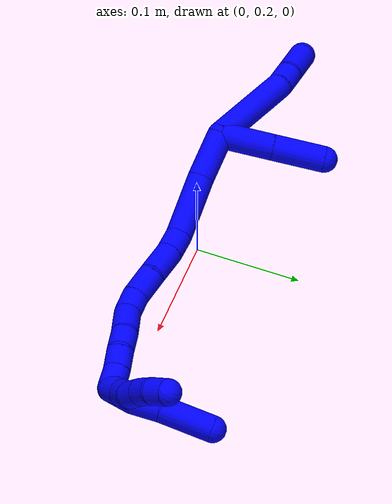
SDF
<sdf version="1.7">
 <world name="default">
  <model name="1">
   <static>0</static>
   <link name="1">
    <collision name="collision-cylinder-e_1_2_8">
     <pose>-0.037818 -0.020803 -0.017331 2.2654 -0.949428 -1.66327</pose>
     <geometry><cylinder><radius>0.0125</radius><length>0.093023</length></cylinder></geometry>
     <surface>
      <friction><ode><mu>1.16</mu><mu2>1.16</mu2><slip1>0</slip1><slip2>0</slip2></ode></friction>
      <contact><ode><kp>1e+06</kp><kd>1</kd><max_vel>0</max_vel><min_depth>0.001</min_depth></ode></contact>
     </surface>
    </collision>
    <visual name="visual-cylinder-e_1_2_8">
     <pose>-0.037818 -0.020803 -0.017331 2.2654 -0.949428 -1.66327</pose>
     <geometry><cylinder><radius>0.0125</radius><length>0.093023</length></cylinder></geometry>
     <material><ambient>0 0 1 1</ambient></material>
    </visual>
    <collision name="collision-cylinder-e_2_8_9">
     <pose>-0.084706 -0.044433 -0.037958 2.43257 -1.12434 -2.07914</pose>
     <geometry><cylinder><radius>0.0125</radius><length>0.020113</length></cylinder></geometry>
     <surface>
      <friction><ode><mu>1.16</mu><mu2>1.16</mu2><slip1>0</slip1><slip2>0</slip2></ode></friction>
      <contact><ode><kp>1e+06</kp><kd>1</kd><max_vel>0</max_vel><min_depth>0.001</min_depth></ode></contact>
     </surface>
    </collision>
    <visual name="visual-cylinder-e_2_8_9">
     <pose>-0.084706 -0.044433 -0.037958 2.43257 -1.12434 -2.07914</pose>
     <geometry><cylinder><radius>0.0125</radius><length>0.020113</length></cylinder></geometry>
     <material><ambient>0 0 1 1</ambient></material>
    </visual>
    <collision name="collision-cylinder-e_3_9_6">
     <pose>-0.111309 -0.052255 -0.043977 2.07005 -1.25703 -1.77177</pose>
     <geometry><cylinder><radius>0.0125</radius><length>0.036864</length></cylinder></geometry>
     <surface>
      <friction><ode><mu>1.16</mu><mu2>1.16</mu2><slip1>0</slip1><slip2>0</slip2></ode></friction>
      <contact><ode><kp>1e+06</kp><kd>1</kd><max_vel>0</max_vel><min_depth>0.001</min_depth></ode></contact>
     </surface>
    </collision>
    <visual name="visual-cylinder-e_3_9_6">
     <pose>-0.111309 -0.052255 -0.043977 2.07005 -1.25703 -1.77177</pose>
     <geometry><cylinder><radius>0.0125</radius><length>0.036864</length></cylinder></geometry>
     <material><ambient>0 0 1 1</ambient></material>
    </visual>
    <collision name="collision-cylinder-e_1_2_10">
     <pose>0.000825 -0.024478 -0.005844 1.80515 0.032773 0.041516</pose>
     <geometry><cylinder><radius>0.0125</radius><length>0.050359</length></cylinder></geometry>
     <surface>
      <friction><ode><mu>1.16</mu><mu2>1.16</mu2><slip1>0</slip1><slip2>0</slip2></ode></friction>
      <contact><ode><kp>1e+06</kp><kd>1</kd><max_vel>0</max_vel><min_depth>0.001</min_depth></ode></contact>
     </surface>
    </collision>
    <visual name="visual-cylinder-e_1_2_10">
     <pose>0.000825 -0.024478 -0.005844 1.80515 0.032773 0.041516</pose>
     <geometry><cylinder><radius>0.0125</radius><length>0.050359</length></cylinder></geometry>
     <material><ambient>0 0 1 1</ambient></material>
    </visual>
    <collision name="collision-cylinder-e_2_10_5">
     <pose>0.002603 -0.073056 -0.017547 1.80929 0.038411 0.048865</pose>
     <geometry><cylinder><radius>0.0125</radius><length>0.049641</length></cylinder></geometry>
     <surface>
      <friction><ode><mu>1.16</mu><mu2>1.16</mu2><slip1>0</slip1><slip2>0</slip2></ode></friction>
      <contact><ode><kp>1e+06</kp><kd>1</kd><max_vel>0</max_vel><min_depth>0.001</min_depth></ode></contact>
     </surface>
    </collision>
    <visual name="visual-cylinder-e_2_10_5">
     <pose>0.002603 -0.073056 -0.017547 1.80929 0.038411 0.048865</pose>
     <geometry><cylinder><radius>0.0125</radius><length>0.049641</length></cylinder></geometry>
     <material><ambient>0 0 1 1</ambient></material>
    </visual>
    <collision name="collision-cylinder-e_1_2_11">
     <pose>0.015554 0.001136 0.01692 -0.067053 0.742231 -0.026102</pose>
     <geometry><cylinder><radius>0.0125</radius><length>0.046022</length></cylinder></geometry>
     <surface>
      <friction><ode><mu>1.16</mu><mu2>1.16</mu2><slip1>0</slip1><slip2>0</slip2></ode></friction>
      <contact><ode><kp>1e+06</kp><kd>1</kd><max_vel>0</max_vel><min_depth>0.001</min_depth></ode></contact>
     </surface>
    </collision>
    <visual name="visual-cylinder-e_1_2_11">
     <pose>0.015554 0.001136 0.01692 -0.067053 0.742231 -0.026102</pose>
     <geometry><cylinder><radius>0.0125</radius><length>0.046022</length></cylinder></geometry>
     <material><ambient>0 0 1 1</ambient></material>
    </visual>
    <collision name="collision-cylinder-e_2_11_12">
     <pose>0.053388 0.002446 0.054031 -0.008589 0.834542 -0.003807</pose>
     <geometry><cylinder><radius>0.0125</radius><length>0.060138</length></cylinder></geometry>
     <surface>
      <friction><ode><mu>1.16</mu><mu2>1.16</mu2><slip1>0</slip1><slip2>0</slip2></ode></friction>
      <contact><ode><kp>1e+06</kp><kd>1</kd><max_vel>0</max_vel><min_depth>0.001</min_depth></ode></contact>
     </surface>
    </collision>
    <visual name="visual-cylinder-e_2_11_12">
     <pose>0.053388 0.002446 0.054031 -0.008589 0.834542 -0.003807</pose>
     <geometry><cylinder><radius>0.0125</radius><length>0.060138</length></cylinder></geometry>
     <material><ambient>0 0 1 1</ambient></material>
    </visual>
    <collision name="collision-cylinder-e_3_12_13">
     <pose>0.085452 0.004614 0.079105 -0.387781 1.07633 -0.233362</pose>
     <geometry><cylinder><radius>0.0125</radius><length>0.022228</length></cylinder></geometry>
     <surface>
      <friction><ode><mu>1.16</mu><mu2>1.16</mu2><slip1>0</slip1><slip2>0</slip2></ode></friction>
      <contact><ode><kp>1e+06</kp><kd>1</kd><max_vel>0</max_vel><min_depth>0.001</min_depth></ode></contact>
     </surface>
    </collision>
    <visual name="visual-cylinder-e_3_12_13">
     <pose>0.085452 0.004614 0.079105 -0.387781 1.07633 -0.233362</pose>
     <geometry><cylinder><radius>0.0125</radius><length>0.022228</length></cylinder></geometry>
     <material><ambient>0 0 1 1</ambient></material>
    </visual>
    <collision name="collision-cylinder-e_4_13_14">
     <pose>0.109452 0.011517 0.09015 -0.672629 1.0648 -0.406245</pose>
     <geometry><cylinder><radius>0.0125</radius><length>0.032509</length></cylinder></geometry>
     <surface>
      <friction><ode><mu>1.16</mu><mu2>1.16</mu2><slip1>0</slip1><slip2>0</slip2></ode></friction>
      <contact><ode><kp>1e+06</kp><kd>1</kd><max_vel>0</max_vel><min_depth>0.001</min_depth></ode></contact>
     </surface>
    </collision>
    <visual name="visual-cylinder-e_4_13_14">
     <pose>0.109452 0.011517 0.09015 -0.672629 1.0648 -0.406245</pose>
     <geometry><cylinder><radius>0.0125</radius><length>0.032509</length></cylinder></geometry>
     <material><ambient>0 0 1 1</ambient></material>
    </visual>
    <collision name="collision-cylinder-e_5_14_15">
     <pose>0.134884 0.020414 0.103636 -0.498705 0.931374 -0.254568</pose>
     <geometry><cylinder><radius>0.0125</radius><length>0.027951</length></cylinder></geometry>
     <surface>
      <friction><ode><mu>1.16</mu><mu2>1.16</mu2><slip1>0</slip1><slip2>0</slip2></ode></friction>
      <contact><ode><kp>1e+06</kp><kd>1</kd><max_vel>0</max_vel><min_depth>0.001</min_depth></ode></contact>
     </surface>
    </collision>
    <visual name="visual-cylinder-e_5_14_15">
     <pose>0.134884 0.020414 0.103636 -0.498705 0.931374 -0.254568</pose>
     <geometry><cylinder><radius>0.0125</radius><length>0.027951</length></cylinder></geometry>
     <material><ambient>0 0 1 1</ambient></material>
    </visual>
    <collision name="collision-cylinder-e_6_15_16">
     <pose>0.15535 0.025595 0.115316 -0.267162 1.11659 -0.16747</pose>
     <geometry><cylinder><radius>0.0125</radius><length>0.020592</length></cylinder></geometry>
     <surface>
      <friction><ode><mu>1.16</mu><mu2>1.16</mu2><slip1>0</slip1><slip2>0</slip2></ode></friction>
      <contact><ode><kp>1e+06</kp><kd>1</kd><max_vel>0</max_vel><min_depth>0.001</min_depth></ode></contact>
     </surface>
    </collision>
    <visual name="visual-cylinder-e_6_15_16">
     <pose>0.15535 0.025595 0.115316 -0.267162 1.11659 -0.16747</pose>
     <geometry><cylinder><radius>0.0125</radius><length>0.020592</length></cylinder></geometry>
     <material><ambient>0 0 1 1</ambient></material>
    </visual>
    <collision name="collision-cylinder-e_7_16_17">
     <pose>0.178566 0.026159 0.121743 0.294725 1.41712 0.253071</pose>
     <geometry><cylinder><radius>0.0125</radius><length>0.02826</length></cylinder></geometry>
     <surface>
      <friction><ode><mu>1.16</mu><mu2>1.16</mu2><slip1>0</slip1><slip2>0</slip2></ode></friction>
      <contact><ode><kp>1e+06</kp><kd>1</kd><max_vel>0</max_vel><min_depth>0.001</min_depth></ode></contact>
     </surface>
    </collision>
    <visual name="visual-cylinder-e_7_16_17">
     <pose>0.178566 0.026159 0.121743 0.294725 1.41712 0.253071</pose>
     <geometry><cylinder><radius>0.0125</radius><length>0.02826</length></cylinder></geometry>
     <material><ambient>0 0 1 1</ambient></material>
    </visual>
    <collision name="collision-cylinder-e_8_17_18">
     <pose>0.202384 0.02537 0.127016 0.050041 1.25615 0.036342</pose>
     <geometry><cylinder><radius>0.0125</radius><length>0.020727</length></cylinder></geometry>
     <surface>
      <friction><ode><mu>1.16</mu><mu2>1.16</mu2><slip1>0</slip1><slip2>0</slip2></ode></friction>
      <contact><ode><kp>1e+06</kp><kd>1</kd><max_vel>0</max_vel><min_depth>0.001</min_depth></ode></contact>
     </surface>
    </collision>
    <visual name="visual-cylinder-e_8_17_18">
     <pose>0.202384 0.02537 0.127016 0.050041 1.25615 0.036342</pose>
     <geometry><cylinder><radius>0.0125</radius><length>0.020727</length></cylinder></geometry>
     <material><ambient>0 0 1 1</ambient></material>
    </visual>
    <collision name="collision-cylinder-e_9_18_19">
     <pose>0.221321 0.024036 0.135049 0.238456 1.07008 0.14177</pose>
     <geometry><cylinder><radius>0.0125</radius><length>0.020706</length></cylinder></geometry>
     <surface>
      <friction><ode><mu>1.16</mu><mu2>1.16</mu2><slip1>0</slip1><slip2>0</slip2></ode></friction>
      <contact><ode><kp>1e+06</kp><kd>1</kd><max_vel>0</max_vel><min_depth>0.001</min_depth></ode></contact>
     </surface>
    </collision>
    <visual name="visual-cylinder-e_9_18_19">
     <pose>0.221321 0.024036 0.135049 0.238456 1.07008 0.14177</pose>
     <geometry><cylinder><radius>0.0125</radius><length>0.020706</length></cylinder></geometry>
     <material><ambient>0 0 1 1</ambient></material>
    </visual>
    <collision name="collision-cylinder-e_10_19_1">
     <pose>0.239971 0.023037 0.144037 -0.042035 1.16051 -0.027558</pose>
     <geometry><cylinder><radius>0.0125</radius><length>0.020868</length></cylinder></geometry>
     <surface>
      <friction><ode><mu>1.16</mu><mu2>1.16</mu2><slip1>0</slip1><slip2>0</slip2></ode></friction>
      <contact><ode><kp>1e+06</kp><kd>1</kd><max_vel>0</max_vel><min_depth>0.001</min_depth></ode></contact>
     </surface>
    </collision>
    <visual name="visual-cylinder-e_10_19_1">
     <pose>0.239971 0.023037 0.144037 -0.042035 1.16051 -0.027558</pose>
     <geometry><cylinder><radius>0.0125</radius><length>0.020868</length></cylinder></geometry>
     <material><ambient>0 0 1 1</ambient></material>
    </visual>
    <collision name="collision-cylinder-e_1_1_20">
     <pose>0.254432 0.0128 0.146353 1.74587 0.433426 0.513478</pose>
     <geometry><cylinder><radius>0.0125</radius><length>0.023301</length></cylinder></geometry>
     <surface>
      <friction><ode><mu>1.16</mu><mu2>1.16</mu2><slip1>0</slip1><slip2>0</slip2></ode></friction>
      <contact><ode><kp>1e+06</kp><kd>1</kd><max_vel>0</max_vel><min_depth>0.001</min_depth></ode></contact>
     </surface>
    </collision>
    <visual name="visual-cylinder-e_1_1_20">
     <pose>0.254432 0.0128 0.146353 1.74587 0.433426 0.513478</pose>
     <geometry><cylinder><radius>0.0125</radius><length>0.023301</length></cylinder></geometry>
     <material><ambient>0 0 1 1</ambient></material>
    </visual>
    <collision name="collision-cylinder-e_2_20_21">
     <pose>0.26252 -0.010134 0.140672 1.86831 0.239202 0.322269</pose>
     <geometry><cylinder><radius>0.0125</radius><length>0.026965</length></cylinder></geometry>
     <surface>
      <friction><ode><mu>1.16</mu><mu2>1.16</mu2><slip1>0</slip1><slip2>0</slip2></ode></friction>
      <contact><ode><kp>1e+06</kp><kd>1</kd><max_vel>0</max_vel><min_depth>0.001</min_depth></ode></contact>
     </surface>
    </collision>
    <visual name="visual-cylinder-e_2_20_21">
     <pose>0.26252 -0.010134 0.140672 1.86831 0.239202 0.322269</pose>
     <geometry><cylinder><radius>0.0125</radius><length>0.026965</length></cylinder></geometry>
     <material><ambient>0 0 1 1</ambient></material>
    </visual>
    <collision name="collision-cylinder-e_3_21_4">
     <pose>0.270521 -0.046717 0.132783 1.73751 0.194519 0.229701</pose>
     <geometry><cylinder><radius>0.0125</radius><length>0.049734</length></cylinder></geometry>
     <surface>
      <friction><ode><mu>1.16</mu><mu2>1.16</mu2><slip1>0</slip1><slip2>0</slip2></ode></friction>
      <contact><ode><kp>1e+06</kp><kd>1</kd><max_vel>0</max_vel><min_depth>0.001</min_depth></ode></contact>
     </surface>
    </collision>
    <visual name="visual-cylinder-e_3_21_4">
     <pose>0.270521 -0.046717 0.132783 1.73751 0.194519 0.229701</pose>
     <geometry><cylinder><radius>0.0125</radius><length>0.049734</length></cylinder></geometry>
     <material><ambient>0 0 1 1</ambient></material>
    </visual>
    <collision name="collision-cylinder-e_1_1_22">
     <pose>0.257352 0.019682 0.143047 2.5405 0.896708 1.99685</pose>
     <geometry><cylinder><radius>0.0125</radius><length>0.02</length></cylinder></geometry>
     <surface>
      <friction><ode><mu>1.16</mu><mu2>1.16</mu2><slip1>0</slip1><slip2>0</slip2></ode></friction>
      <contact><ode><kp>1e+06</kp><kd>1</kd><max_vel>0</max_vel><min_depth>0.001</min_depth></ode></contact>
     </surface>
    </collision>
    <visual name="visual-cylinder-e_1_1_22">
     <pose>0.257352 0.019682 0.143047 2.5405 0.896708 1.99685</pose>
     <geometry><cylinder><radius>0.0125</radius><length>0.02</length></cylinder></geometry>
     <material><ambient>0 0 1 1</ambient></material>
    </visual>
    <collision name="collision-cylinder-e_2_22_23">
     <pose>0.273379 0.014421 0.132466 2.83314 0.96396 2.56387</pose>
     <geometry><cylinder><radius>0.0125</radius><length>0.02</length></cylinder></geometry>
     <surface>
      <friction><ode><mu>1.16</mu><mu2>1.16</mu2><slip1>0</slip1><slip2>0</slip2></ode></friction>
      <contact><ode><kp>1e+06</kp><kd>1</kd><max_vel>0</max_vel><min_depth>0.001</min_depth></ode></contact>
     </surface>
    </collision>
    <visual name="visual-cylinder-e_2_22_23">
     <pose>0.273379 0.014421 0.132466 2.83314 0.96396 2.56387</pose>
     <geometry><cylinder><radius>0.0125</radius><length>0.02</length></cylinder></geometry>
     <material><ambient>0 0 1 1</ambient></material>
    </visual>
    <collision name="collision-cylinder-e_3_23_24">
     <pose>0.287532 0.010101 0.119413 2.81416 0.63573 2.21097</pose>
     <geometry><cylinder><radius>0.0125</radius><length>0.02</length></cylinder></geometry>
     <surface>
      <friction><ode><mu>1.16</mu><mu2>1.16</mu2><slip1>0</slip1><slip2>0</slip2></ode></friction>
      <contact><ode><kp>1e+06</kp><kd>1</kd><max_vel>0</max_vel><min_depth>0.001</min_depth></ode></contact>
     </surface>
    </collision>
    <visual name="visual-cylinder-e_3_23_24">
     <pose>0.287532 0.010101 0.119413 2.81416 0.63573 2.21097</pose>
     <geometry><cylinder><radius>0.0125</radius><length>0.02</length></cylinder></geometry>
     <material><ambient>0 0 1 1</ambient></material>
    </visual>
    <collision name="collision-cylinder-e_4_24_25">
     <pose>0.30011 0.00459 0.104913 2.73982 0.726202 2.15761</pose>
     <geometry><cylinder><radius>0.0125</radius><length>0.02</length></cylinder></geometry>
     <surface>
      <friction><ode><mu>1.16</mu><mu2>1.16</mu2><slip1>0</slip1><slip2>0</slip2></ode></friction>
      <contact><ode><kp>1e+06</kp><kd>1</kd><max_vel>0</max_vel><min_depth>0.001</min_depth></ode></contact>
     </surface>
    </collision>
    <visual name="visual-cylinder-e_4_24_25">
     <pose>0.30011 0.00459 0.104913 2.73982 0.726202 2.15761</pose>
     <geometry><cylinder><radius>0.0125</radius><length>0.02</length></cylinder></geometry>
     <material><ambient>0 0 1 1</ambient></material>
    </visual>
    <collision name="collision-cylinder-e_5_25_3">
     <pose>0.312497 -0.003536 0.091713 2.45283 0.612216 1.44459</pose>
     <geometry><cylinder><radius>0.0125</radius><length>0.02</length></cylinder></geometry>
     <surface>
      <friction><ode><mu>1.16</mu><mu2>1.16</mu2><slip1>0</slip1><slip2>0</slip2></ode></friction>
      <contact><ode><kp>1e+06</kp><kd>1</kd><max_vel>0</max_vel><min_depth>0.001</min_depth></ode></contact>
     </surface>
    </collision>
    <visual name="visual-cylinder-e_5_25_3">
     <pose>0.312497 -0.003536 0.091713 2.45283 0.612216 1.44459</pose>
     <geometry><cylinder><radius>0.0125</radius><length>0.02</length></cylinder></geometry>
     <material><ambient>0 0 1 1</ambient></material>
    </visual>
    <collision name="collision-sphere-3">
     <pose>0.318244 -0.008737 0.085395 0 -0 0</pose>
     <geometry><sphere><radius>0.0125</radius></sphere></geometry>
     <surface>
      <friction><ode><mu>1.16</mu><mu2>1.16</mu2><slip1>0</slip1><slip2>0</slip2></ode></friction>
      <contact><ode><kp>1e+06</kp><kd>1</kd><max_vel>0</max_vel><min_depth>0.001</min_depth></ode></contact>
     </surface>
    </collision>
    <visual name="visual-sphere-3">
     <pose>0.318244 -0.008737 0.085395 0 -0 0</pose>
     <geometry><sphere><radius>0.0125</radius></sphere></geometry>
     <material><ambient>0 0 1 1</ambient></material>
    </visual>
    <collision name="collision-sphere-25">
     <pose>0.30675 0.001666 0.098031 0 -0 0</pose>
     <geometry><sphere><radius>0.0125</radius></sphere></geometry>
     <surface>
      <friction><ode><mu>1.16</mu><mu2>1.16</mu2><slip1>0</slip1><slip2>0</slip2></ode></friction>
      <contact><ode><kp>1e+06</kp><kd>1</kd><max_vel>0</max_vel><min_depth>0.001</min_depth></ode></contact>
     </surface>
    </collision>
    <visual name="visual-sphere-25">
     <pose>0.30675 0.001666 0.098031 0 -0 0</pose>
     <geometry><sphere><radius>0.0125</radius></sphere></geometry>
     <material><ambient>0 0 1 1</ambient></material>
    </visual>
    <collision name="collision-sphere-24">
     <pose>0.293469 0.007514 0.111794 0 -0 0</pose>
     <geometry><sphere><radius>0.0125</radius></sphere></geometry>
     <surface>
      <friction><ode><mu>1.16</mu><mu2>1.16</mu2><slip1>0</slip1><slip2>0</slip2></ode></friction>
      <contact><ode><kp>1e+06</kp><kd>1</kd><max_vel>0</max_vel><min_depth>0.001</min_depth></ode></contact>
     </surface>
    </collision>
    <visual name="visual-sphere-24">
     <pose>0.293469 0.007514 0.111794 0 -0 0</pose>
     <geometry><sphere><radius>0.0125</radius></sphere></geometry>
     <material><ambient>0 0 1 1</ambient></material>
    </visual>
    <collision name="collision-sphere-23">
     <pose>0.281594 0.012689 0.127032 0 -0 0</pose>
     <geometry><sphere><radius>0.0125</radius></sphere></geometry>
     <surface>
      <friction><ode><mu>1.16</mu><mu2>1.16</mu2><slip1>0</slip1><slip2>0</slip2></ode></friction>
      <contact><ode><kp>1e+06</kp><kd>1</kd><max_vel>0</max_vel><min_depth>0.001</min_depth></ode></contact>
     </surface>
    </collision>
    <visual name="visual-sphere-23">
     <pose>0.281594 0.012689 0.127032 0 -0 0</pose>
     <geometry><sphere><radius>0.0125</radius></sphere></geometry>
     <material><ambient>0 0 1 1</ambient></material>
    </visual>
    <collision name="collision-sphere-22">
     <pose>0.265165 0.016152 0.137899 0 -0 0</pose>
     <geometry><sphere><radius>0.0125</radius></sphere></geometry>
     <surface>
      <friction><ode><mu>1.16</mu><mu2>1.16</mu2><slip1>0</slip1><slip2>0</slip2></ode></friction>
      <contact><ode><kp>1e+06</kp><kd>1</kd><max_vel>0</max_vel><min_depth>0.001</min_depth></ode></contact>
     </surface>
    </collision>
    <visual name="visual-sphere-22">
     <pose>0.265165 0.016152 0.137899 0 -0 0</pose>
     <geometry><sphere><radius>0.0125</radius></sphere></geometry>
     <material><ambient>0 0 1 1</ambient></material>
    </visual>
    <collision name="collision-sphere-4">
     <pose>0.275327 -0.070777 0.128734 0 -0 0</pose>
     <geometry><sphere><radius>0.0125</radius></sphere></geometry>
     <surface>
      <friction><ode><mu>1.16</mu><mu2>1.16</mu2><slip1>0</slip1><slip2>0</slip2></ode></friction>
      <contact><ode><kp>1e+06</kp><kd>1</kd><max_vel>0</max_vel><min_depth>0.001</min_depth></ode></contact>
     </surface>
    </collision>
    <visual name="visual-sphere-4">
     <pose>0.275327 -0.070777 0.128734 0 -0 0</pose>
     <geometry><sphere><radius>0.0125</radius></sphere></geometry>
     <material><ambient>0 0 1 1</ambient></material>
    </visual>
    <collision name="collision-sphere-21">
     <pose>0.265714 -0.022657 0.136832 0 -0 0</pose>
     <geometry><sphere><radius>0.0125</radius></sphere></geometry>
     <surface>
      <friction><ode><mu>1.16</mu><mu2>1.16</mu2><slip1>0</slip1><slip2>0</slip2></ode></friction>
      <contact><ode><kp>1e+06</kp><kd>1</kd><max_vel>0</max_vel><min_depth>0.001</min_depth></ode></contact>
     </surface>
    </collision>
    <visual name="visual-sphere-21">
     <pose>0.265714 -0.022657 0.136832 0 -0 0</pose>
     <geometry><sphere><radius>0.0125</radius></sphere></geometry>
     <material><ambient>0 0 1 1</ambient></material>
    </visual>
    <collision name="collision-sphere-20">
     <pose>0.259325 0.002389 0.144512 0 -0 0</pose>
     <geometry><sphere><radius>0.0125</radius></sphere></geometry>
     <surface>
      <friction><ode><mu>1.16</mu><mu2>1.16</mu2><slip1>0</slip1><slip2>0</slip2></ode></friction>
      <contact><ode><kp>1e+06</kp><kd>1</kd><max_vel>0</max_vel><min_depth>0.001</min_depth></ode></contact>
     </surface>
    </collision>
    <visual name="visual-sphere-20">
     <pose>0.259325 0.002389 0.144512 0 -0 0</pose>
     <geometry><sphere><radius>0.0125</radius></sphere></geometry>
     <material><ambient>0 0 1 1</ambient></material>
    </visual>
    <collision name="collision-sphere-5">
     <pose>0.003556 -0.097156 -0.023406 0 -0 0</pose>
     <geometry><sphere><radius>0.0125</radius></sphere></geometry>
     <surface>
      <friction><ode><mu>1.16</mu><mu2>1.16</mu2><slip1>0</slip1><slip2>0</slip2></ode></friction>
      <contact><ode><kp>1e+06</kp><kd>1</kd><max_vel>0</max_vel><min_depth>0.001</min_depth></ode></contact>
     </surface>
    </collision>
    <visual name="visual-sphere-5">
     <pose>0.003556 -0.097156 -0.023406 0 -0 0</pose>
     <geometry><sphere><radius>0.0125</radius></sphere></geometry>
     <material><ambient>0 0 1 1</ambient></material>
    </visual>
    <collision name="collision-sphere-10">
     <pose>0.00165 -0.048956 -0.011688 0 -0 0</pose>
     <geometry><sphere><radius>0.0125</radius></sphere></geometry>
     <surface>
      <friction><ode><mu>1.16</mu><mu2>1.16</mu2><slip1>0</slip1><slip2>0</slip2></ode></friction>
      <contact><ode><kp>1e+06</kp><kd>1</kd><max_vel>0</max_vel><min_depth>0.001</min_depth></ode></contact>
     </surface>
    </collision>
    <visual name="visual-sphere-10">
     <pose>0.00165 -0.048956 -0.011688 0 -0 0</pose>
     <geometry><sphere><radius>0.0125</radius></sphere></geometry>
     <material><ambient>0 0 1 1</ambient></material>
    </visual>
    <collision name="collision-sphere-6">
     <pose>-0.128841 -0.057249 -0.046701 0 -0 0</pose>
     <geometry><sphere><radius>0.0125</radius></sphere></geometry>
     <surface>
      <friction><ode><mu>1.16</mu><mu2>1.16</mu2><slip1>0</slip1><slip2>0</slip2></ode></friction>
      <contact><ode><kp>1e+06</kp><kd>1</kd><max_vel>0</max_vel><min_depth>0.001</min_depth></ode></contact>
     </surface>
    </collision>
    <visual name="visual-sphere-6">
     <pose>-0.128841 -0.057249 -0.046701 0 -0 0</pose>
     <geometry><sphere><radius>0.0125</radius></sphere></geometry>
     <material><ambient>0 0 1 1</ambient></material>
    </visual>
    <collision name="collision-sphere-9">
     <pose>-0.093777 -0.04726 -0.041254 0 -0 0</pose>
     <geometry><sphere><radius>0.0125</radius></sphere></geometry>
     <surface>
      <friction><ode><mu>1.16</mu><mu2>1.16</mu2><slip1>0</slip1><slip2>0</slip2></ode></friction>
      <contact><ode><kp>1e+06</kp><kd>1</kd><max_vel>0</max_vel><min_depth>0.001</min_depth></ode></contact>
     </surface>
    </collision>
    <visual name="visual-sphere-9">
     <pose>-0.093777 -0.04726 -0.041254 0 -0 0</pose>
     <geometry><sphere><radius>0.0125</radius></sphere></geometry>
     <material><ambient>0 0 1 1</ambient></material>
    </visual>
    <collision name="collision-sphere-2">
     <geometry><sphere><radius>0.0125</radius></sphere></geometry>
     <surface>
      <friction><ode><mu>1.16</mu><mu2>1.16</mu2><slip1>0</slip1><slip2>0</slip2></ode></friction>
      <contact><ode><kp>1e+06</kp><kd>1</kd><max_vel>0</max_vel><min_depth>0.001</min_depth></ode></contact>
     </surface>
    </collision>
    <visual name="visual-sphere-2">
     <geometry><sphere><radius>0.0125</radius></sphere></geometry>
     <material><ambient>0 0 1 1</ambient></material>
    </visual>
    <collision name="collision-sphere-19">
     <pose>0.230403 0.022862 0.139879 0 -0 0</pose>
     <geometry><sphere><radius>0.0125</radius></sphere></geometry>
     <surface>
      <friction><ode><mu>1.16</mu><mu2>1.16</mu2><slip1>0</slip1><slip2>0</slip2></ode></friction>
      <contact><ode><kp>1e+06</kp><kd>1</kd><max_vel>0</max_vel><min_depth>0.001</min_depth></ode></contact>
     </surface>
    </collision>
    <visual name="visual-sphere-19">
     <pose>0.230403 0.022862 0.139879 0 -0 0</pose>
     <geometry><sphere><radius>0.0125</radius></sphere></geometry>
     <material><ambient>0 0 1 1</ambient></material>
    </visual>
    <collision name="collision-sphere-8">
     <pose>-0.075635 -0.041606 -0.034662 0 -0 0</pose>
     <geometry><sphere><radius>0.0125</radius></sphere></geometry>
     <surface>
      <friction><ode><mu>1.16</mu><mu2>1.16</mu2><slip1>0</slip1><slip2>0</slip2></ode></friction>
      <contact><ode><kp>1e+06</kp><kd>1</kd><max_vel>0</max_vel><min_depth>0.001</min_depth></ode></contact>
     </surface>
    </collision>
    <visual name="visual-sphere-8">
     <pose>-0.075635 -0.041606 -0.034662 0 -0 0</pose>
     <geometry><sphere><radius>0.0125</radius></sphere></geometry>
     <material><ambient>0 0 1 1</ambient></material>
    </visual>
    <collision name="collision-sphere-11">
     <pose>0.031108 0.002272 0.03384 0 -0 0</pose>
     <geometry><sphere><radius>0.0125</radius></sphere></geometry>
     <surface>
      <friction><ode><mu>1.16</mu><mu2>1.16</mu2><slip1>0</slip1><slip2>0</slip2></ode></friction>
      <contact><ode><kp>1e+06</kp><kd>1</kd><max_vel>0</max_vel><min_depth>0.001</min_depth></ode></contact>
     </surface>
    </collision>
    <visual name="visual-sphere-11">
     <pose>0.031108 0.002272 0.03384 0 -0 0</pose>
     <geometry><sphere><radius>0.0125</radius></sphere></geometry>
     <material><ambient>0 0 1 1</ambient></material>
    </visual>
    <collision name="collision-sphere-12">
     <pose>0.075669 0.002619 0.074222 0 -0 0</pose>
     <geometry><sphere><radius>0.0125</radius></sphere></geometry>
     <surface>
      <friction><ode><mu>1.16</mu><mu2>1.16</mu2><slip1>0</slip1><slip2>0</slip2></ode></friction>
      <contact><ode><kp>1e+06</kp><kd>1</kd><max_vel>0</max_vel><min_depth>0.001</min_depth></ode></contact>
     </surface>
    </collision>
    <visual name="visual-sphere-12">
     <pose>0.075669 0.002619 0.074222 0 -0 0</pose>
     <geometry><sphere><radius>0.0125</radius></sphere></geometry>
     <material><ambient>0 0 1 1</ambient></material>
    </visual>
    <collision name="collision-sphere-13">
     <pose>0.095235 0.006608 0.083987 0 -0 0</pose>
     <geometry><sphere><radius>0.0125</radius></sphere></geometry>
     <surface>
      <friction><ode><mu>1.16</mu><mu2>1.16</mu2><slip1>0</slip1><slip2>0</slip2></ode></friction>
      <contact><ode><kp>1e+06</kp><kd>1</kd><max_vel>0</max_vel><min_depth>0.001</min_depth></ode></contact>
     </surface>
    </collision>
    <visual name="visual-sphere-13">
     <pose>0.095235 0.006608 0.083987 0 -0 0</pose>
     <geometry><sphere><radius>0.0125</radius></sphere></geometry>
     <material><ambient>0 0 1 1</ambient></material>
    </visual>
    <collision name="collision-sphere-14">
     <pose>0.12367 0.016425 0.096312 0 -0 0</pose>
     <geometry><sphere><radius>0.0125</radius></sphere></geometry>
     <surface>
      <friction><ode><mu>1.16</mu><mu2>1.16</mu2><slip1>0</slip1><slip2>0</slip2></ode></friction>
      <contact><ode><kp>1e+06</kp><kd>1</kd><max_vel>0</max_vel><min_depth>0.001</min_depth></ode></contact>
     </surface>
    </collision>
    <visual name="visual-sphere-14">
     <pose>0.12367 0.016425 0.096312 0 -0 0</pose>
     <geometry><sphere><radius>0.0125</radius></sphere></geometry>
     <material><ambient>0 0 1 1</ambient></material>
    </visual>
    <collision name="collision-sphere-15">
     <pose>0.146099 0.024402 0.110959 0 -0 0</pose>
     <geometry><sphere><radius>0.0125</radius></sphere></geometry>
     <surface>
      <friction><ode><mu>1.16</mu><mu2>1.16</mu2><slip1>0</slip1><slip2>0</slip2></ode></friction>
      <contact><ode><kp>1e+06</kp><kd>1</kd><max_vel>0</max_vel><min_depth>0.001</min_depth></ode></contact>
     </surface>
    </collision>
    <visual name="visual-sphere-15">
     <pose>0.146099 0.024402 0.110959 0 -0 0</pose>
     <geometry><sphere><radius>0.0125</radius></sphere></geometry>
     <material><ambient>0 0 1 1</ambient></material>
    </visual>
    <collision name="collision-sphere-16">
     <pose>0.164602 0.026787 0.119674 0 -0 0</pose>
     <geometry><sphere><radius>0.0125</radius></sphere></geometry>
     <surface>
      <friction><ode><mu>1.16</mu><mu2>1.16</mu2><slip1>0</slip1><slip2>0</slip2></ode></friction>
      <contact><ode><kp>1e+06</kp><kd>1</kd><max_vel>0</max_vel><min_depth>0.001</min_depth></ode></contact>
     </surface>
    </collision>
    <visual name="visual-sphere-16">
     <pose>0.164602 0.026787 0.119674 0 -0 0</pose>
     <geometry><sphere><radius>0.0125</radius></sphere></geometry>
     <material><ambient>0 0 1 1</ambient></material>
    </visual>
    <collision name="collision-sphere-17">
     <pose>0.192529 0.025531 0.123813 0 -0 0</pose>
     <geometry><sphere><radius>0.0125</radius></sphere></geometry>
     <surface>
      <friction><ode><mu>1.16</mu><mu2>1.16</mu2><slip1>0</slip1><slip2>0</slip2></ode></friction>
      <contact><ode><kp>1e+06</kp><kd>1</kd><max_vel>0</max_vel><min_depth>0.001</min_depth></ode></contact>
     </surface>
    </collision>
    <visual name="visual-sphere-17">
     <pose>0.192529 0.025531 0.123813 0 -0 0</pose>
     <geometry><sphere><radius>0.0125</radius></sphere></geometry>
     <material><ambient>0 0 1 1</ambient></material>
    </visual>
    <collision name="collision-sphere-18">
     <pose>0.212239 0.02521 0.13022 0 -0 0</pose>
     <geometry><sphere><radius>0.0125</radius></sphere></geometry>
     <surface>
      <friction><ode><mu>1.16</mu><mu2>1.16</mu2><slip1>0</slip1><slip2>0</slip2></ode></friction>
      <contact><ode><kp>1e+06</kp><kd>1</kd><max_vel>0</max_vel><min_depth>0.001</min_depth></ode></contact>
     </surface>
    </collision>
    <visual name="visual-sphere-18">
     <pose>0.212239 0.02521 0.13022 0 -0 0</pose>
     <geometry><sphere><radius>0.0125</radius></sphere></geometry>
     <material><ambient>0 0 1 1</ambient></material>
    </visual>
    <collision name="collision-sphere-1">
     <pose>0.249539 0.023212 0.148195 0 -0 0</pose>
     <geometry><sphere><radius>0.0125</radius></sphere></geometry>
     <surface>
      <friction><ode><mu>1.16</mu><mu2>1.16</mu2><slip1>0</slip1><slip2>0</slip2></ode></friction>
      <contact><ode><kp>1e+06</kp><kd>1</kd><max_vel>0</max_vel><min_depth>0.001</min_depth></ode></contact>
     </surface>
    </collision>
    <visual name="visual-sphere-1">
     <pose>0.249539 0.023212 0.148195 0 -0 0</pose>
     <geometry><sphere><radius>0.0125</radius></sphere></geometry>
     <material><ambient>0 0 1 1</ambient></material>
    </visual>
    <inertial>
     <pose>0.108146 -0.00932 0.061786 0 -0 0</pose>
     <mass>0.75</mass>
     <inertia><ixx>4.4e-05</ixx><ixy>0</ixy><ixz>0</ixz><iyy>4.5e-05</iyy><iyz>0</iyz><izz>8.9e-05</izz></inertia>
    </inertial>
   </link>
   <pose>-0.100935 0.184198 0.046282 2.71027 -0.376843 0.309939</pose>
  </model>
 </world>
</sdf>
